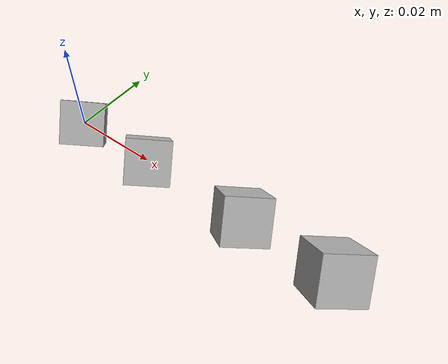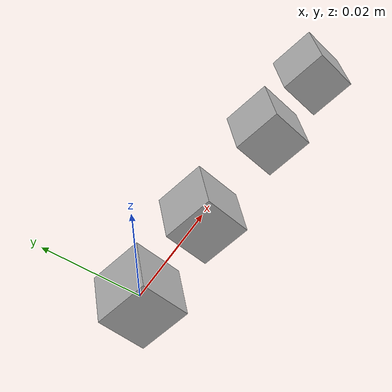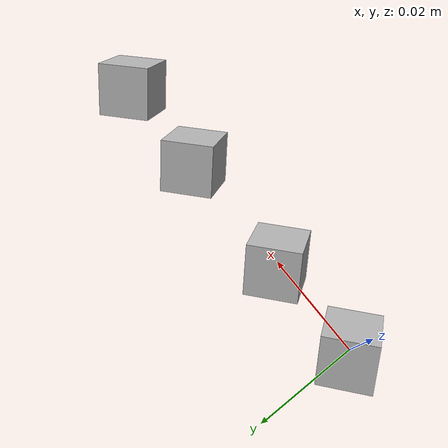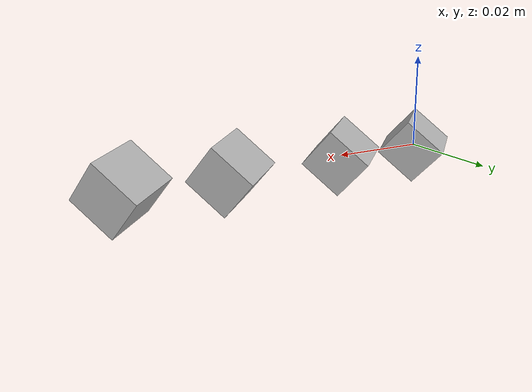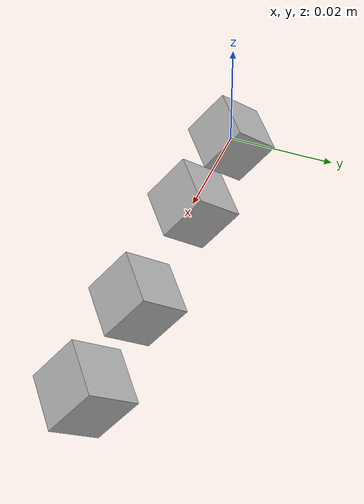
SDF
<sdf version='1.6'>
<model name='corners'>
<static>true</static>

<!-- 45 deg = 0.785398163 radians -->
		<!-- base cube -->
<link name='cube1'>
	<pose>0 0 0 -0.235917 0.846902 -1.051349</pose>
	<collision name='base_collision'>
		<geometry>
			<box>
				<size>0.01 0.01 0.01</size>
			</box>
		</geometry>
	</collision>
	<visual name='base_visual'>
		<geometry>
			<box>
				<size>0.01 0.01 0.01</size>
			</box>
		</geometry>
		<material>
			<script>
				<uri>file://media/materials/scripts/gazebo.material</uri>
			</script>
		</material>
	</visual>
</link>
		<!-- cube 2 -->
<link name='cube2'>
	<pose>0.02 0 0 -0.235917 0.846902 -1.051349</pose>
	<collision name='base_collision'>
		<geometry>
			<box>
				<size>0.01 0.01 0.01</size>
			</box>
		</geometry>
	</collision>
	<visual name='base_visual'>
		<geometry>
			<box>
				<size>0.01 0.01 0.01</size>
			</box>
		</geometry>
		<material>
			<script>
				<uri>file://media/materials/scripts/gazebo.material</uri>
			</script>
		</material>
	</visual>
</link>
		<!-- cube 3 -->
<link name='cube3'>
	<pose>0.045 0 0 -0.235917 0.846902 -1.051349</pose>
	<collision name='base_collision'>
		<geometry>
			<box>
				<size>0.01 0.01 0.01</size>
			</box>
		</geometry>
	</collision>
	<visual name='base_visual'>
		<geometry>
			<box>
				<size>0.01 0.01 0.01</size>
			</box>
		</geometry>
		<material>
			<script>
				<uri>file://media/materials/scripts/gazebo.material</uri>
			</script>
		</material>
	</visual>
</link>
		<!-- cube 4 -->
<link name='cube4'>
	<pose>0.065 0 0 -0.235917 0.846902 -1.051349</pose>
	<collision name='base_collision'>
		<geometry>
			<box>
				<size>0.01 0.01 0.01</size>
			</box>
		</geometry>
	</collision>
	<visual name='base_visual'>
		<geometry>
			<box>
				<size>0.01 0.01 0.01</size>
			</box>
		</geometry>
		<material>
			<script>
				<uri>file://media/materials/scripts/gazebo.material</uri>
			</script>
		</material>
	</visual>
</link>

	</model>
</sdf>
<!-- cube 3 -->
<!-- cube 4 -->

<!-- rpy = -0.235917 0.846902 -1.051349 -->
